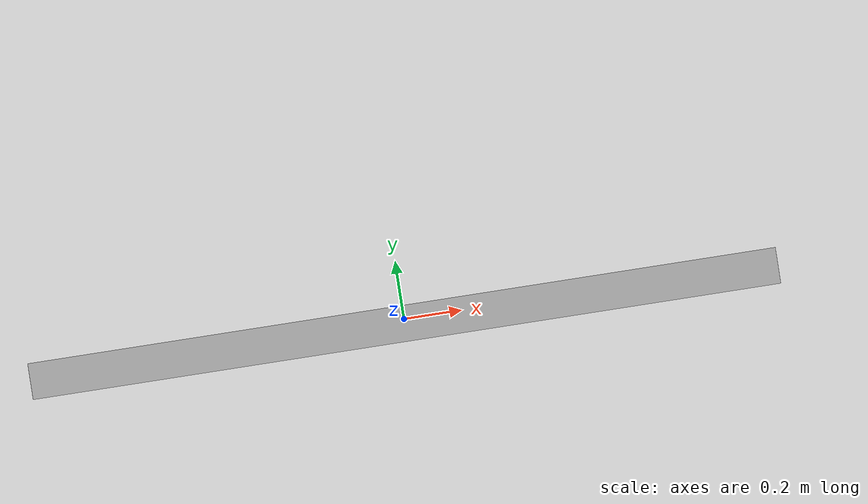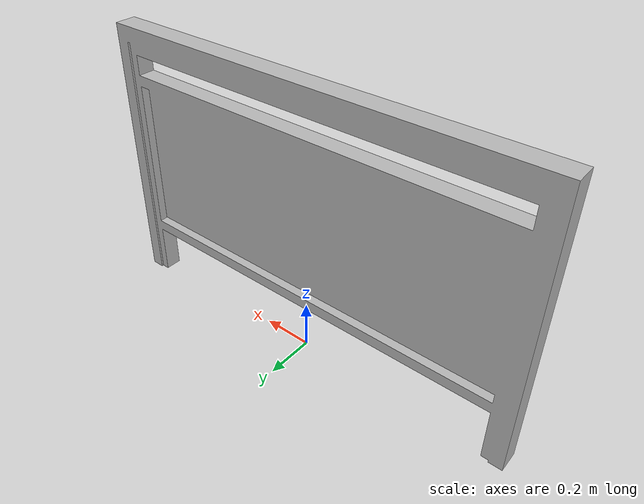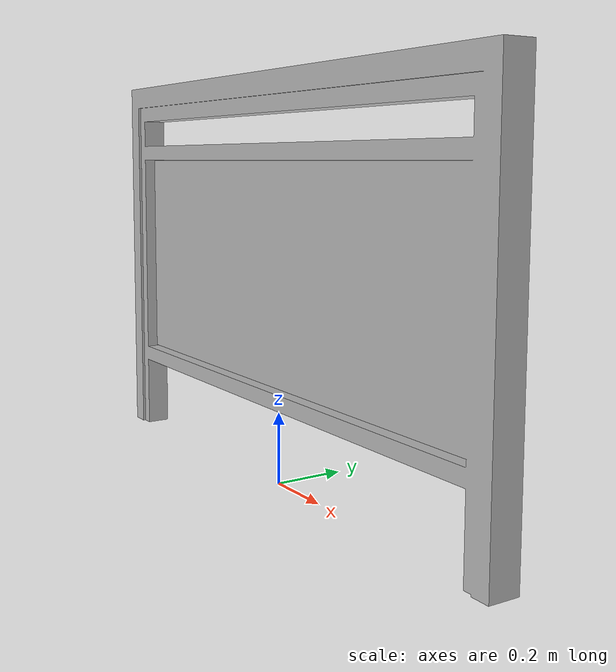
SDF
<?xml version='1.0' encoding='utf-8'?>
<sdf version="1.6">
  <model name="FoodCourtBarricade">
   <static>true</static>
    <link name="body">
      <pose>0 0 0 0 0 0</pose>

      <visual name="visual">
        <geometry>
          <mesh>
            <uri>model://FoodCourtBarricade/meshes/FoodCourtBarricade.dae</uri>
          </mesh>
        </geometry>
      </visual>

      <collision name="collision">
        <geometry>
          <mesh>
            <uri>model://FoodCourtBarricade/meshes/FoodCourtBarricade_Col.obj</uri>
          </mesh>
        </geometry>
      </collision>

    </link>
  </model>
</sdf>
